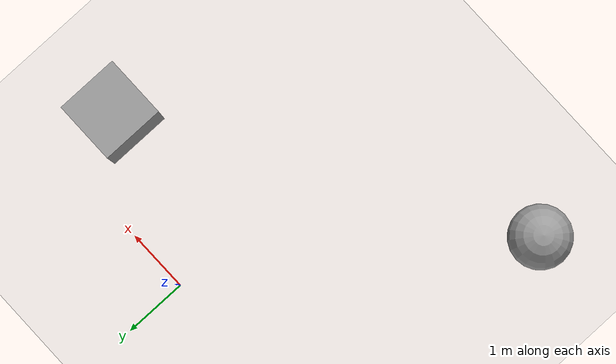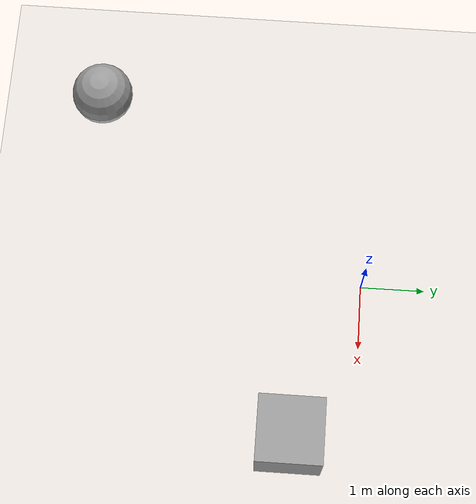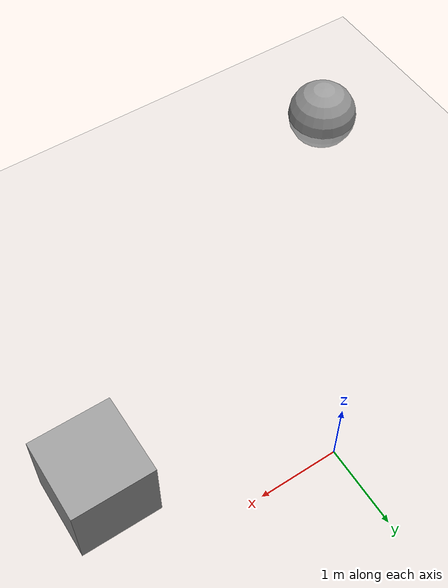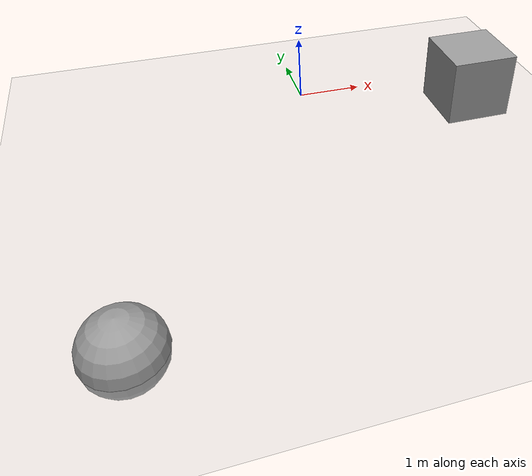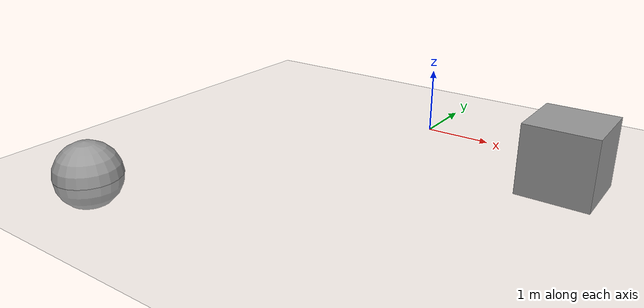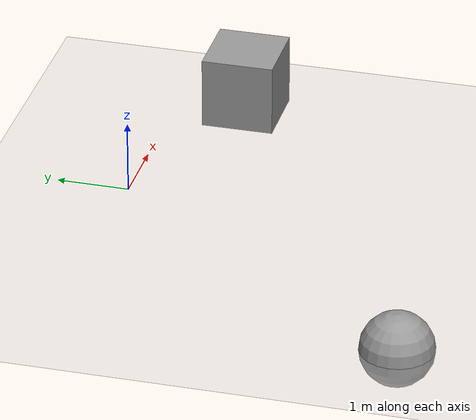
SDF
<?xml version="1.0" ?>
<sdf version="1.5">
  <world name="default">
    <!-- A global light source -->
    <include>
      <uri>model://sun</uri>
    </include>
    <!-- A ground plane -->
    <include>
      <uri>model://ground_plane</uri>
    </include>
    <!-- A unit box -->
    <model name='unit_box_0_0'>
      <pose frame=''>2.5 -1.0 0.5 0 -0 0</pose>
      <link name='link'>
        <inertial>
          <mass>1</mass>
          <inertia>
            <ixx>0.166667</ixx>
            <ixy>0</ixy>
            <ixz>0</ixz>
            <iyy>0.166667</iyy>
            <iyz>0</iyz>
            <izz>0.166667</izz>
          </inertia>
        </inertial>
        <collision name='collision'>
          <geometry>
            <box>
              <size>1 1 1</size>
            </box>
          </geometry>
          <max_contacts>10</max_contacts>
          <surface>
            <contact>
              <ode/>
            </contact>
            <bounce/>
            <friction>
              <torsional>
                <ode/>
              </torsional>
              <ode/>
            </friction>
          </surface>
        </collision>
        <visual name='visual'>
          <geometry>
            <box>
              <size>1 1 1</size>
            </box>
          </geometry>
          <material>
            <script>
              <name>Gazebo/Grey</name>
              <uri>file://media/materials/scripts/gazebo.material</uri>
            </script>
          </material>
        </visual>
        <self_collide>0</self_collide>
        <kinematic>0</kinematic>
        <gravity>1</gravity>
      </link>
    </model>

    <model name='unit_sphere_0'>
      <link name='link'>
        <pose frame=''>0 0 0 0 -0 0</pose>
        <inertial>
          <mass>1</mass>
          <inertia>
            <ixx>0.1</ixx>
            <ixy>0</ixy>
            <ixz>0</ixz>
            <iyy>0.1</iyy>
            <iyz>0</iyz>
            <izz>0.1</izz>
          </inertia>
          <pose frame=''>0 0 0 0 -0 0</pose>
        </inertial>
        <self_collide>0</self_collide>
        <kinematic>0</kinematic>
        <gravity>1</gravity>
        <visual name='visual'>
          <geometry>
            <sphere>
              <radius>0.5</radius>
            </sphere>
          </geometry>
          <material>
            <script>
              <name>Gazebo/Grey</name>
              <uri>file://media/materials/scripts/gazebo.material</uri>
            </script>
            <shader type='pixel'>
              <normal_map>__default__</normal_map>
            </shader>
            <ambient>0 0 0 1</ambient>
            <diffuse>0.7 0.7 0.7 1</diffuse>
            <specular>0.01 0.01 0.01 1</specular>
            <emissive>0 0 0 1</emissive>
          </material>
          <pose frame=''>0 0 0 0 -0 0</pose>
          <cast_shadows>1</cast_shadows>
          <transparency>0</transparency>
        </visual>
        <collision name='collision'>
          <laser_retro>0</laser_retro>
          <max_contacts>10</max_contacts>
          <pose frame=''>0 0 0 0 -0 0</pose>
          <geometry>
            <sphere>
              <radius>0.5</radius>
            </sphere>
          </geometry>
          <surface>
            <friction>
              <ode>
                <mu>1</mu>
                <mu2>1</mu2>
                <fdir1>0 0 0</fdir1>
                <slip1>0</slip1>
                <slip2>0</slip2>
              </ode>
              <torsional>
                <coefficient>1</coefficient>
                <patch_radius>0</patch_radius>
                <surface_radius>0</surface_radius>
                <use_patch_radius>1</use_patch_radius>
                <ode>
                  <slip>0</slip>
                </ode>
              </torsional>
            </friction>
            <bounce>
              <restitution_coefficient>0</restitution_coefficient>
              <threshold>1e+06</threshold>
            </bounce>
            <contact>
              <collide_without_contact>0</collide_without_contact>
              <collide_without_contact_bitmask>1</collide_without_contact_bitmask>
              <collide_bitmask>1</collide_bitmask>
              <ode>
                <soft_cfm>0</soft_cfm>
                <soft_erp>0.2</soft_erp>
                <kp>1e+13</kp>
                <kd>1</kd>
                <max_vel>0.01</max_vel>
                <min_depth>0</min_depth>
              </ode>
              <bullet>
                <split_impulse>1</split_impulse>
                <split_impulse_penetration_threshold>-0.01</split_impulse_penetration_threshold>
                <soft_cfm>0</soft_cfm>
                <soft_erp>0.2</soft_erp>
                <kp>1e+13</kp>
                <kd>1</kd>
              </bullet>
            </contact>
          </surface>
        </collision>
        <enable_wind>0</enable_wind>
      </link>
      <static>0</static>
      <allow_auto_disable>1</allow_auto_disable>
      <pose frame=''>-3.09213 -4.44101 0 0 -0 0</pose>
    </model>
  </world>
</sdf>
